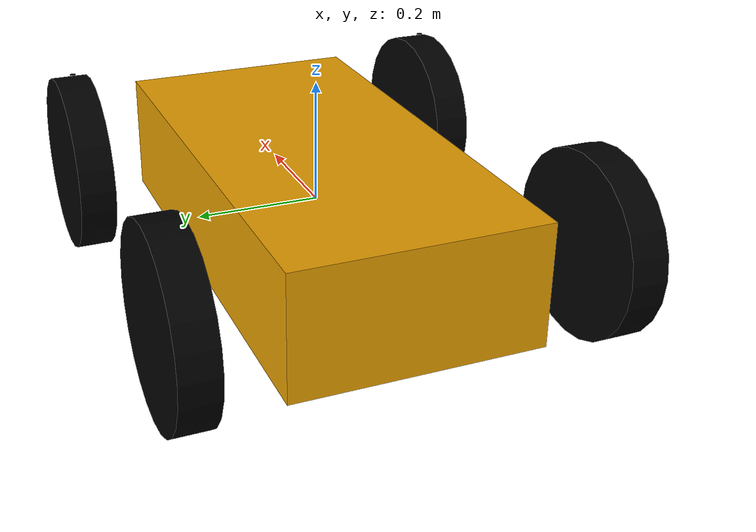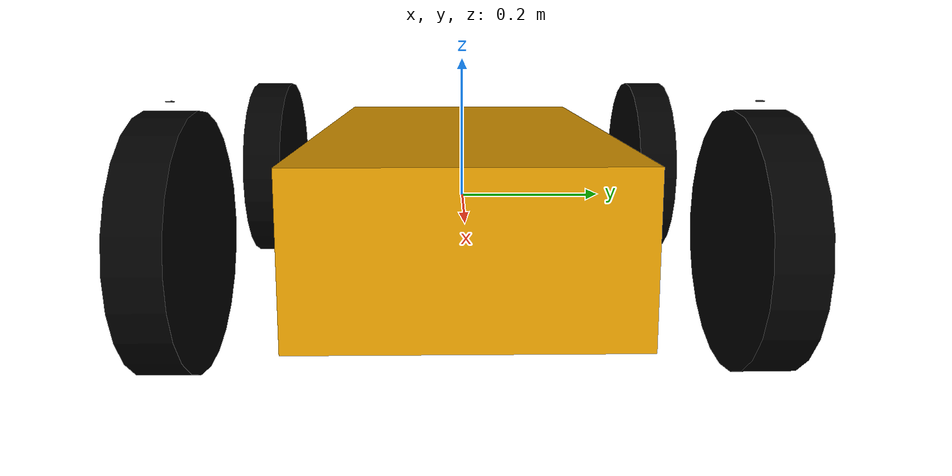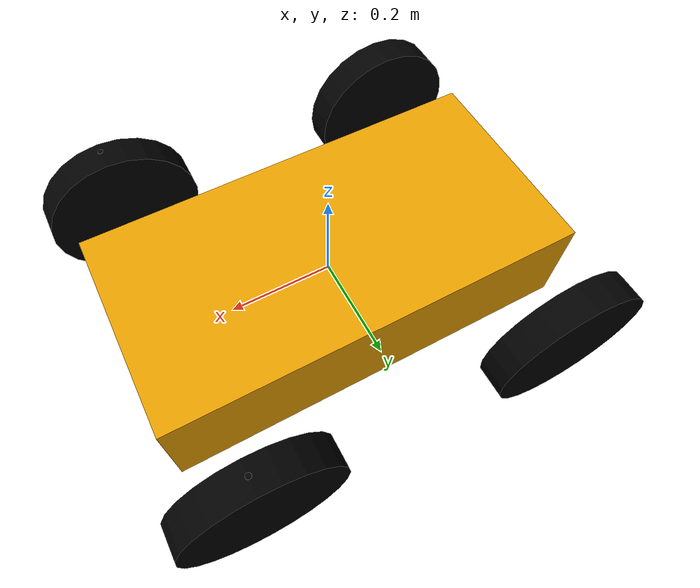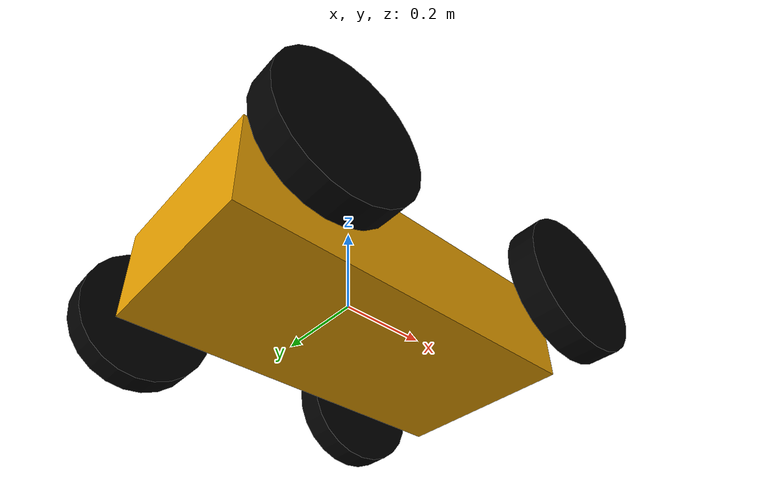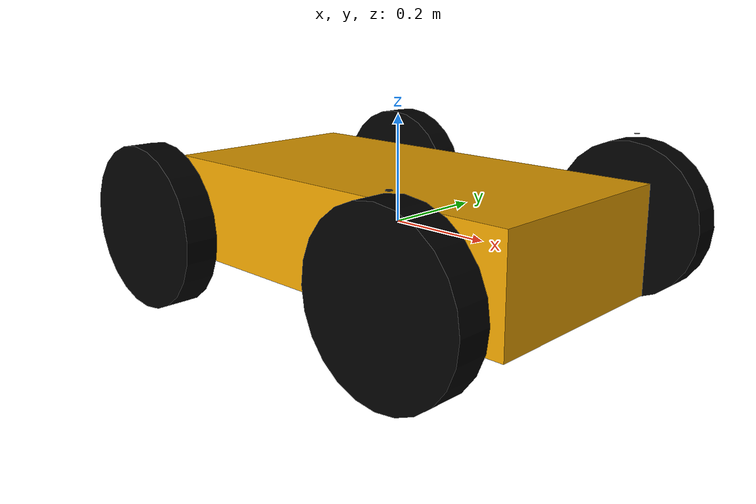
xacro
<robot name="hunter" xmlns:xacro="http://wiki.ros.org/xacro">
    <xacro:property name="length" value="0.8" />
    <xacro:property name="width" value="0.4" />
    <xacro:property name="high" value="0.2" />

    <link name="base_link">
        <visual>
            <geometry>
                <box size="${length} ${width} ${high}" />
            </geometry>
        </visual>
    </link>

    <xacro:property name="wheel_radius" value="0.15" /><!-- 半径 -->
    <xacro:property name="wheel_width" value="0.06" /><!-- 宽度 -->

    <!-- rear -->
    <xacro:macro name="add_rear_wheels" params="name flag x y"> <!--left 1--> <!--right -1-->
        <link name="${name}_rear_link">
            <visual>
                <origin xyz="0 0 0" rpy="1.57 0 0" />
                <geometry>
                    <cylinder radius="${wheel_radius}" length="${wheel_width}" />
                </geometry>
                <material name="black">
                    <color rgba="0.0 0.0 0.0 1.0" />
                </material>
            </visual>
        </link>
        <joint name="${name}_rear_joint" type="continuous">
            <origin xyz="${-x} ${flag * y} 0" rpy="0 0 0" />
            <parent link="base_link" />
            <child link="${name}_rear_link" />
            <axis xyz="0 1 0" />
            <limit
                lower="-3.14"
                upper="3.14"
                effort="0"
                velocity="0" />
        </joint>
    </xacro:macro>
    <xacro:add_rear_wheels name="left" flag="1.0" x="0.3" y="0.33"/>
    <xacro:add_rear_wheels name="right" flag="-1.0" x="0.3" y="0.33"/>

    <xacro:property name="steer_radius" value="0.005" /><!-- 半径 -->
    <xacro:property name="steer_width" value="0.001" /><!-- 宽度 -->
    <!-- front -->
    <xacro:macro name="add_front_wheels" params="name flag x y z"> <!--left 1--> <!--right -1-->
        <link name="front_steer_${name}_link">
            <visual>
                <geometry>
                    <cylinder radius="${steer_radius}" length="${steer_width}" />
                </geometry>
                <origin rpy="0 0 0"  xyz="0 0 0" />
                <material name="black">
                    <color rgba="0.0 0.0 0.0 1.0" />
                </material>
            </visual>
        </link>
        <joint name="front_steer_${name}_joint" type="revolute">
            <origin rpy="0 0 0"  xyz="${x} ${flag * y} ${z}" />
            <parent link="base_link" />
            <child link="front_steer_${name}_link" />
            <axis xyz="0 0 1" />
            <limit lower="-0.69" upper="0.69" effort="0" velocity="0" />
        </joint>
        <link name="front_${name}_wheel_link">
            <visual>
                <origin
                    xyz="0 0 0"
                    rpy="1.57 0 0" />
                <geometry>
                    <cylinder radius="${wheel_radius}" length="${wheel_width}" />
                </geometry>
                <material name="black">
                    <color rgba="0.0 0.0 0.0 1.0" />
                </material>
            </visual>
        </link>
        <joint name="front_${name}_wheel_joint" type="continuous">
            <origin xyz="0 0 ${-z}" rpy="0 0 0" />   <!-- amend the position between steer_${name}_link and front ${name} wheel-->
            <parent link="front_steer_${name}_link" />
            <child  link="front_${name}_wheel_link" />
            <axis xyz="0 1 0" />
        </joint>
    </xacro:macro>
    <xacro:add_front_wheels name="left" flag="1.0" x="0.3" y="0.33" z="0.16"/>
    <xacro:add_front_wheels name="right" flag="-1.0" x="0.3" y="0.33" z="0.16"/>

</robot>
